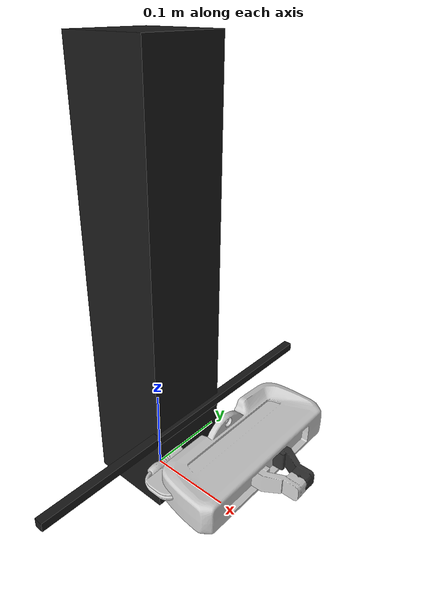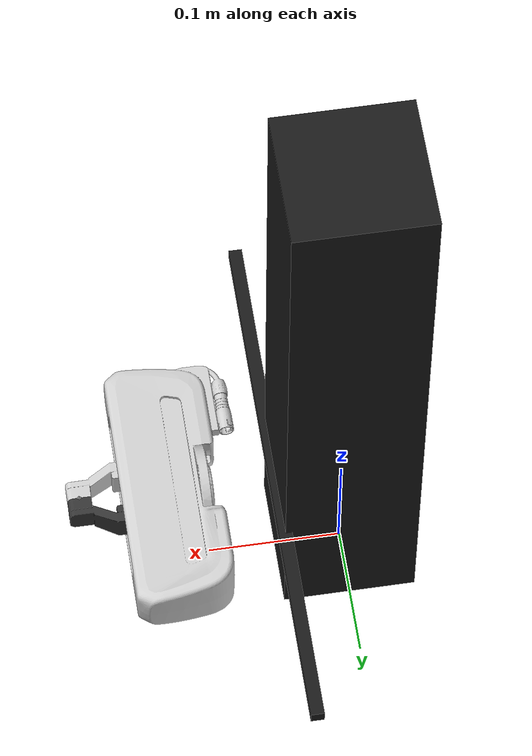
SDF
<?xml version="1.0"?>
<!--This file contains the SDF model of a Franka Panda hand.
It has been produced using gazebo sdf script from its urdf included
in the pyBullet examples. -->
<sdf version="1.6">
  <world name="default">
    <model name="panda">
      <link name="panda_zbase">
        <pose frame="">0 0 0 0 -0 0</pose>
        <inertial>
          <pose frame="">0 0 0.0 0 -0 0</pose>
          <mass>0.0</mass>
          <inertia>
            <ixx>0</ixx>
            <ixy>0</ixy>
            <ixz>0</ixz>
            <iyy>0</iyy>
            <iyz>0</iyz>
            <izz>0</izz>
          </inertia>
        </inertial>
        <visual name="panda_zbase_visual">
          <pose frame="">0 0 0.25 0 -0 0</pose>
          <geometry>
            <box>
              <size>0.1 0.1 0.5</size>
            </box>
          </geometry>
          <material>
            <ambient>1 0 0 1</ambient>
            <diffuse>0.1 0.1 0.1 1.0</diffuse>
            <specular>0.4 0.4 0.4 1</specular>
            <emissive>0 0 0 0</emissive>
          </material>
        </visual>
        <collision name="panda_hand_collision">
          <pose frame="">0 0 0 0 1.57079632679 0</pose>
          <geometry>
            <box>
              <size>0.1 0.1 0.5</size>
            </box>
          </geometry>
        </collision>
      </link>
      <link name="panda_xbase">
        <pose frame="">0.05 0 0.1 1.57079632679 0 0</pose>
        <inertial>
          <pose frame="">0 0 0.0 0 -0 0</pose>
          <mass>10.0</mass>
          <inertia>
            <ixx>0</ixx>
            <ixy>0</ixy>
            <ixz>0</ixz>
            <iyy>0</iyy>
            <iyz>0</iyz>
            <izz>0</izz>
          </inertia>
        </inertial>
        <visual name="panda_xbase_visual">
          <pose frame="">0 0 0 0 0 0</pose>
          <geometry>
            <box>
              <size>0.01 0.01 0.4</size>
            </box>
          </geometry>
          <material>
            <ambient>1 0 0 1</ambient>
            <diffuse>0.1 0.1 0.1 1.0</diffuse>
            <specular>0.4 0.4 0.4 1</specular>
            <emissive>0 0 0 0</emissive>
          </material>
        </visual>
      </link>
      <link name="panda_hand">
        <pose frame="">0.1 0 0.1 0 0 0</pose>
        <inertial>
          <pose frame="">0 0 0.04 0 0 0</pose>
          <mass>0.81</mass>
          <inertia>
            <ixx>0.2</ixx>
            <ixy>0</ixy>
            <ixz>0</ixz>
            <iyy>0.2</iyy>
            <iyz>0</iyz>
            <izz>0.2</izz>
          </inertia>
        </inertial>
        <collision name="panda_hand_collision">
          <pose frame="">0 0 0 0 1.57079632679 0</pose>
          <geometry>
            <mesh>
              <scale>1 1 1</scale>
              <uri>model://meshes/collision/hand.obj</uri>
            </mesh>
          </geometry>
        </collision>
        <visual name="panda_hand_visual">
          <pose frame="">0 0 0 0 1.57079632679 0</pose>
          <geometry>
            <mesh>
              <scale>1 1 1</scale>
              <uri>model://meshes/visual/hand.obj</uri>
            </mesh>
          </geometry>
          <material>
            <ambient>1 0 0 1</ambient>
            <diffuse>0.8 0.8 0.8 1.0</diffuse>
            <specular>0.4 0.4 0.4 1</specular>
            <emissive>0 0 0 0</emissive>
          </material>
        </visual>
      </link>
      <link name="panda_leftfinger">
        <pose frame="">0.1516 0 0.1 0 1.57079632679 0</pose>
        <inertial>
          <pose frame="">0 0.01 0.02 0 0 0</pose>
          <mass>0.1</mass>
          <inertia>
            <ixx>0.1</ixx>
            <ixy>0</ixy>
            <ixz>0</ixz>
            <iyy>0.1</iyy>
            <iyz>0</iyz>
            <izz>0.1</izz>
          </inertia>
        </inertial>
        <collision name="panda_leftfinger_collision">
          <pose frame="">0 0 0 0 0 0</pose>
          <geometry>
            <mesh>
              <scale>1 1 1</scale>
              <uri>model://meshes/collision/finger.obj</uri>
            </mesh>
          </geometry>
        </collision>
        <visual name="panda_leftfinger_visual">
          <pose frame="">0 0 0 0 0 0</pose>
          <geometry>
            <mesh>
              <scale>1 1 1</scale>
              <uri>model://meshes/visual/finger.obj</uri>
            </mesh>
          </geometry>
          <material>
            <ambient>1 0 0 1</ambient>
            <diffuse>0.2 0.2 0.2 1.0</diffuse>
            <specular>0.4 0.4 0.4 1</specular>
            <emissive>0 0 0 0</emissive>
          </material>
        </visual>
      </link>
      <link name="panda_rightfinger">
        <pose frame="">0.1516 0 0.1 0 1.57079632679 0</pose>
        <inertial>
          <pose frame="">0 -0.01 0.02 0 0 0</pose>
          <mass>0.1</mass>
          <inertia>
            <ixx>0.1</ixx>
            <ixy>0</ixy>
            <ixz>0</ixz>
            <iyy>0.1</iyy>
            <iyz>0</iyz>
            <izz>0.1</izz>
          </inertia>
        </inertial>
        <collision name="panda_rightfinger_collision">
          <pose frame="">0 0 0 0 -0 -3.14159</pose>
          <geometry>
            <mesh>
              <scale>1 1 1</scale>
              <uri>model://meshes/collision/finger.obj</uri>
            </mesh>
          </geometry>
        </collision>
        <visual name="panda_rightfinger_visual">
          <pose frame="">0 0 0 0 -0 -3.14159</pose>
          <geometry>
            <mesh>
              <scale>1 1 1</scale>
              <uri>model://meshes/visual/finger.obj</uri>
            </mesh>
          </geometry>
          <material>
            <ambient>1 0 0 1</ambient>
            <diffuse>0.8 0.8 0.8 1.0</diffuse>
            <specular>0.4 0.4 0.4 1</specular>
            <emissive>0 0 0 0</emissive>
          </material>
        </visual>
      </link>
      <joint name="panda_xbase_zbase" type="fixed">
        <child>panda_xbase</child>
        <parent>panda_zbase</parent>
      </joint>
      <joint name="panda_hand_xbase" type="prismatic">
        <child>panda_hand</child>
        <parent>panda_xbase</parent>
        <axis>
          <xyz>0 1 0</xyz>
          <limit>
            <lower>-0.2</lower>
            <upper>0.2</upper>
            <effort>1000</effort>
            <velocity>5</velocity>
          </limit>
          <dynamics>
            <damping>0.3</damping>
            <friction>0.1</friction>
          </dynamics>
          <use_parent_model_frame>1</use_parent_model_frame>
        </axis>
      </joint>
      <joint name="panda_finger_joint1" type="prismatic">
        <child>panda_leftfinger</child>
        <parent>panda_hand</parent>
        <axis>
          <xyz>0 1 0</xyz>
          <limit>
            <lower>0.0</lower>
            <upper>0.04</upper>
            <effort>200</effort>
            <velocity>0.2</velocity>
          </limit>
          <dynamics>
            <damping>0.3</damping>
            <friction>0.0</friction>
            <spring_reference>0</spring_reference>
            <spring_stiffness>0</spring_stiffness>
          </dynamics>
          <use_parent_model_frame>1</use_parent_model_frame>
        </axis>
      </joint>
      <joint name="panda_finger_joint2" type="prismatic">
        <child>panda_rightfinger</child>
        <parent>panda_hand</parent>
        <axis>
          <xyz>0 -1 0</xyz>
          <limit>
            <lower>0.0</lower>
            <upper>0.04</upper>
            <effort>200</effort>
            <velocity>0.2</velocity>
          </limit>
          <dynamics>
            <damping>0.3</damping>
            <friction>0.0</friction>
            <spring_reference>0</spring_reference>
            <spring_stiffness>0</spring_stiffness>
          </dynamics>
          <use_parent_model_frame>1</use_parent_model_frame>
        </axis>
      </joint>
    </model>
  </world>
</sdf>
